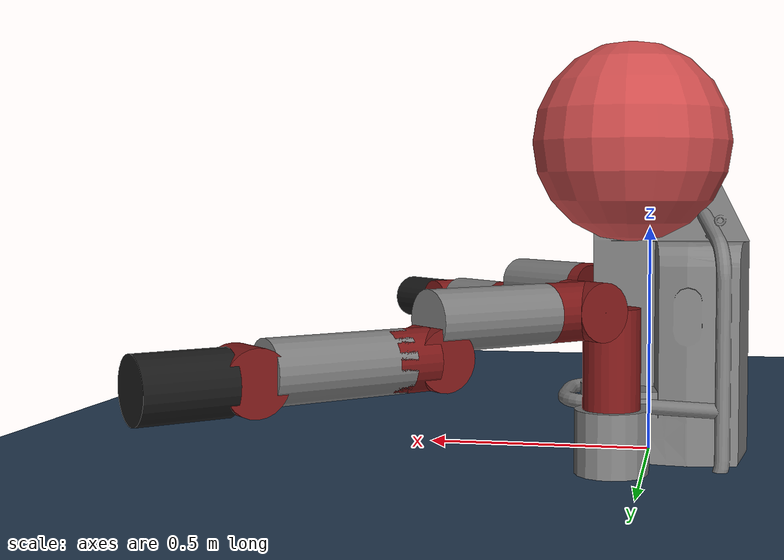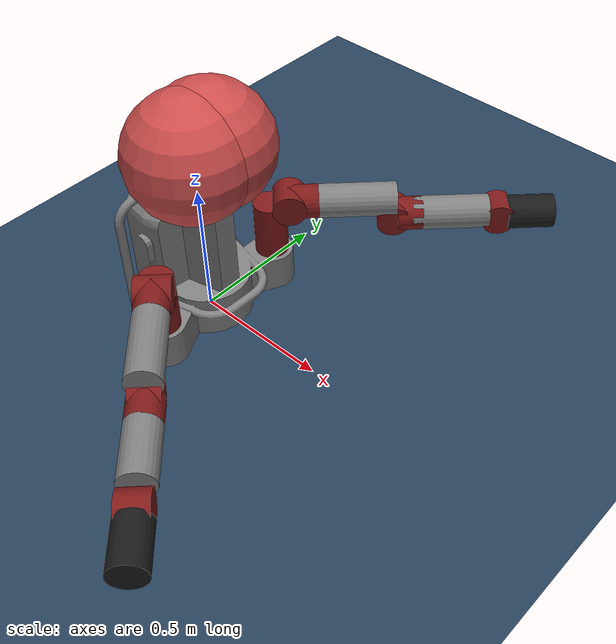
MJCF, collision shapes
<mujoco model="baxter scene">
  <include file="baxter.xml"/>

  <statistic center="0.3 0 0.4" extent="0.8"/>

  <visual>
    <headlight diffuse="0.6 0.6 0.6" ambient="0.3 0.3 0.3" specular="0 0 0"/>
    <rgba haze="0.15 0.25 0.35 1"/>
    <global azimuth="140" elevation="-20"/>
  </visual>

  <asset>
    <texture type="skybox" builtin="gradient" rgb1="0.3 0.5 0.7" rgb2="0 0 0" width="512" height="3072"/>
    <texture type="2d" name="groundplane" builtin="checker" mark="edge" rgb1="0.2 0.3 0.4" rgb2="0.1 0.2 0.3"
      markrgb="0.8 0.8 0.8" width="300" height="300"/>
    <material name="groundplane" texture="groundplane" texuniform="true" texrepeat="5 5" reflectance="0.2"/>
  </asset>

  <worldbody>
    <light pos="0 0 1.5" dir="0 0 -1" directional="true"/>
    <geom name="floor" size="0 0 0.05" type="plane" material="groundplane"/>
  </worldbody>
</mujoco>

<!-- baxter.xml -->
<mujoco model="baxter">
  <compiler angle="radian" meshdir="assets" autolimits="true"/>
  <asset>
    <material name="Material_001.001" specular="0.5" shininess="0.225" rgba="0.121856 0.121856 0.121856 1.000000"/>
    <material name="Material.003" specular="0.5" shininess="0.225" rgba="0.640000 0.000000 0.000000 1.000000"/>
    <material name="Material_001.003" specular="0.5" shininess="0.225" rgba="0.000000 0.000000 0.000000 1.000000"/>
    <material name="Material_001.004" specular="0.5" shininess="0.225" rgba="0.512000 0.000000 0.000000 1.000000"/>
    <material name="Material_002" specular="0.5" shininess="0.225" rgba="0.016303 0.016303 0.016303 1.000000"/>
    <material name="Material_001.005" specular="0.5" shininess="0.225" rgba="0.097485 0.097485 0.097485 1.000000"/>
    <material name="Material_002.005" specular="0.5" shininess="0.225" rgba="0.016303 0.016303 0.016303 1.000000"/>
    <material name="Material_001.006" specular="0.5" shininess="0.225" rgba="0.640000 0.000000 0.000000 1.000000"/>
    <material name="Material_001.010" specular="0.5" shininess="0.225" rgba="0.512000 0.000000 0.000000 1.000000"/>
    <material name="Material_003" specular="0.5" shininess="0.225" rgba="0.016303 0.016303 0.016303 1.000000"/>
    <material name="Material_004" specular="0.5" shininess="0.225" rgba="0.066807 0.066822 0.066822 1.000000"/>
    <material name="Material_005" specular="0.5" shininess="0.225" rgba="0.640000 0.640000 0.640000 1.000000"/>
    <material name="Material_006" specular="0.5" shininess="0.225" rgba="0.351258 0.351258 0.351258 1.000000"/>
    <material name="Material_007" specular="0.5" shininess="0.225" rgba="0.016303 0.016303 0.016303 1.000000"/>
    <material name="Material_001.008" specular="0.5" shininess="0.225" rgba="0.512000 0.013653 0.013653 1.000000"/>
    <material name="Material_002.002" specular="0.5" shininess="0.225" rgba="0.016303 0.016303 0.016303 1.000000"/>
    <material name="Material_001.009" specular="0.5" shininess="0.225" rgba="0.512000 0.000000 0.000000 1.000000"/>
    <material name="Material_002.003" specular="0.5" shininess="0.225" rgba="0.097485 0.097485 0.097485 1.000000"/>
    <material name="Material_003.001" specular="0.5" shininess="0.225" rgba="0.016303 0.016303 0.016303 1.000000"/>
    <material name="Material_005.001" specular="0.5" shininess="0.225" rgba="0.512000 0.512000 0.512000 1.000000"/>
    <material name="Material_002.004" specular="0.5" shininess="0.225" rgba="0.097485 0.097485 0.097485 1.000000"/>
    <material name="Material_003.002" specular="0.5" shininess="0.225" rgba="0.016303 0.016303 0.016303 1.000000"/>
    <material name="Material_001.011" specular="0.5" shininess="0.225" rgba="0.016303 0.016303 0.016303 1.000000"/>
    <material name="Material_002.006" specular="0.5" shininess="0.225" rgba="0.512000 0.512000 0.512000 1.000000"/>
    <material name="Material_003.004" specular="0.5" shininess="0.225" rgba="0.170722 0.170722 0.170722 1.000000"/>

    <mesh name="H0" file="H0.obj"/>
    <mesh name="H1_0" file="H1_0.obj"/>
    <mesh name="H1_1" file="H1_1.obj"/>
    <mesh name="E1_0" file="E1_0.obj"/>
    <mesh name="E1_1" file="E1_1.obj"/>
    <mesh name="W1_0" file="W1_0.obj"/>
    <mesh name="W1_1" file="W1_1.obj"/>
    <mesh name="S1" file="S1.obj"/>
    <mesh name="base_link_0" file="base_link_0.obj"/>
    <mesh name="base_link_1" file="base_link_1.obj"/>
    <mesh name="base_link_2" file="base_link_2.obj"/>
    <mesh name="base_link_3" file="base_link_3.obj"/>
    <mesh name="base_link_4" file="base_link_4.obj"/>
    <mesh name="base_link_5" file="base_link_5.obj"/>
    <mesh name="E0_0" file="E0_0.obj"/>
    <mesh name="E0_1" file="E0_1.obj"/>
    <mesh name="W0_0" file="W0_0.obj"/>
    <mesh name="W0_1" file="W0_1.obj"/>
    <mesh name="W0_2" file="W0_2.obj"/>
    <mesh name="W0_3" file="W0_3.obj"/>
    <mesh name="S0_0" file="S0_0.obj"/>
    <mesh name="S0_1" file="S0_1.obj"/>
    <mesh name="W2_0" file="W2_0.obj"/>
    <mesh name="W2_1" file="W2_1.obj"/>
    <mesh name="W2_2" file="W2_2.obj"/>
    <mesh name="base_link_collision" file="base_link_collision.obj"/>
  </asset>
  <default>
    <default class="viz">
      <geom contype="0" conaffinity="0" group="1" type="mesh"/>
    </default>
    <default class="right_col">
      <geom contype="4" conaffinity="3" group="0"/>
    </default>
    <default class="left_col">
      <geom contype="2" conaffinity="5" group="0"/>
    </default>
    <default class="visual">
      <geom contype="0" conaffinity="0" group="1" type="mesh"/>
    </default>
  </default>
  <contact>
    <exclude body1="right_upper_shoulder" body2="torso"/>
    <exclude body1="right_upper_shoulder" body2="right_upper_elbow"/>
    <exclude body1="right_lower_shoulder" body2="torso"/>
    <exclude body1="left_upper_shoulder" body2="torso"/>
    <exclude body1="left_upper_shoulder" body2="left_upper_elbow"/>
    <exclude body1="left_lower_shoulder" body2="torso"/>
    <exclude body1="collision_head_link_1" body2="torso"/>
    <exclude body1="collision_head_link_2" body2="torso"/>
  </contact>
  <worldbody>
    <body name="base" pos="0 0 -0.062">
      <!-- robot view -->
      <camera mode="fixed" name="robotview" pos="1.3 0 0.4" quat="0.653 0.271 0.271 0.653"/>
      <inertial pos="0 0 0" mass="10" diaginertia="0.001 0.001 0.001"/>
      <!-- mount attached here -->
      <body name="fixed_base_link" pos="0 0 0">
        <body name="collision_head_link_1" pos="0.11 0 0.75">
          <inertial pos="0 0 0" mass="0.0001" diaginertia="1e-008 1e-008 1e-008"/>
          <geom name="collision_head_link_1_vis" margin="0.001" type="sphere" class="viz" size="0.001"
            rgba="0.8 0.3 0.3 1" pos="0 0 0"/>
          <geom name="collision_head_link_1_col" margin="0.001" type="sphere" size="0.22" rgba="0.8 0.3 0.3 0.3"
            pos="-0.07 -0.04 0"/>
        </body>
        <body name="collision_head_link_2" pos="0.11 0 0.75">
          <inertial pos="0 0 0" mass="0.0001" diaginertia="1e-008 1e-008 1e-008"/>
          <geom name="collision_head_link_2_col0" margin="0.001" type="sphere" size="0.001" rgba="0.8 0.3 0.3 0.3"
            pos="0 0 0"/>
          <geom name="collision_head_link_2_col1" margin="0.001" type="sphere" size="0.22" rgba="0.8 0.3 0.3 0.3"
            pos="-0.07 0.04 0"/>
        </body>
        <body name="torso" pos="0 0 0">
          <site name="center" pos="0 0 0" size="0.01" rgba="1 0.3 0.3 1" group="2"/>
          <inertial pos="0 0 0" quat="0.997433 0.00167178 0.0715546 -0.00209003" mass="35.3365"
            diaginertia="1.87139 1.66268 0.779991"/>
          <geom mesh="base_link_0" material="Material_005" class="visual"/>
          <geom mesh="base_link_1" material="Material_007" class="visual"/>
          <geom mesh="base_link_2" material="Material_003" class="visual"/>
          <geom mesh="base_link_3" material="Material_001.010" class="visual"/>
          <geom mesh="base_link_4" material="Material_004" class="visual"/>
          <geom mesh="base_link_5" material="Material_006" class="visual"/>
          <geom name="base_link_col" margin="0.001" type="mesh" mesh="base_link_collision"/>
          <body name="head" pos="0.06 0 0.686">
            <inertial pos="0 0 0" quat="0.339345 0.850736 -0.347392 0.201027" mass="0.547767"
              diaginertia="0.00474065 0.00461087 0.00199949"/>
            <!-- Don't use head joint -->
            <geom material="Material_001.001" mesh="H0" class="visual"/>
            <body name="screen" pos="0.1227 0 0" quat="0.453099 0.542864 0.542864 0.453099">
              <inertial pos="0 0 0" quat="0.995785 0.0113501 -0.000390852 0.0910132" mass="0.440171"
                diaginertia="0.0040484 0.00275826 0.00150834"/>
              <geom mesh="H1_0" material="Material.003" pos="0 0 -.03" euler="0 -1.57 0" class="visual"/>
              <geom mesh="H1_1" material="Material_001.003" pos="0 0 -.03" euler="0 -1.57 0" class="visual"/>
              <geom name="screen2_vis" margin="0.001" class="viz" type="box" size="0.109 0.08 0.002"
                rgba="0.9 0.9 0.9 1" pos="0 -0.016 0" quat="0.991445 0.130526 0 0"/>
            </body>
          </body>
          <body name="right_arm_mount" pos="0.024645 -0.219645 0.118588" quat="0.923879 0 0 -0.382684">
            <site name="right_center" pos="0 0 0" size="0.01" rgba="1 0.3 0.3 1" group="2"/>
            <inertial pos="0 0 0" mass="0.0001" diaginertia="1e-008 1e-008 1e-008"/>
            <body name="right_upper_shoulder" pos="0.055695 0 0.011038">
              <inertial pos="0.01783 0.00086 0.19127" quat="0.975667 0.0673303 -0.206117 0.0325173" mass="5.70044"
                diaginertia="0.0498344 0.0377511 0.0331351"/>
              <joint limited="true" damping="0" armature=".01" name="right_s0" type="hinge" pos="0 0 0" axis="0 0 1"
                range="-1.70168 1.70168"/>
              <geom mesh="S0_0" material="Material_002.004" class="visual"/>
              <geom mesh="S0_1" material="Material_003.002" class="visual"/>
              <geom margin="0.001" class="right_col" type="cylinder" size="0.06 0.1361" rgba="0.5 0.1 0.1 1"
                pos="0 0 0.1361" name="right_s0_collision"/>
              <body name="right_lower_shoulder" pos="0.069 0 0.27035" quat="0.707107 -0.707107 0 0">
                <inertial pos="0.06845 0.00269 -0.00529" quat="0.447487 0.536948 0.56425 0.439391" mass="3.22698"
                  diaginertia="0.0278991 0.0212327 0.0112937"/>
                <joint limited="true" damping="0" armature=".01" name="right_s1" type="hinge" pos="0 0 0" axis="0 0 1"
                  range="-2.147 1.047"/>
                <geom material="Material_001.006" mesh="S1" class="visual"/>
                <geom margin="0.001" class="right_col" type="cylinder" size="0.06 0.06" rgba="0.5 0.1 0.1 1" pos="0 0 0"
                  name="right_s1_collision"/>
                <body name="right_upper_elbow" pos="0.102 0 0" quat="0.5 0.5 0.5 0.5">
                  <inertial pos="-0.00276 0.00132 0.18086" quat="0.838995 -0.0423128 -0.121287 0.52876" mass="4.31272"
                    diaginertia="0.0287695 0.0273625 0.011409"/>
                  <joint limited="true" damping="0" armature=".01" name="right_e0" type="hinge" pos="0 0 0" axis="0 0 1"
                    range="-3.05418 3.05418"/>
                  <geom mesh="E0_0" material="Material_001.008" class="visual"/>
                  <geom mesh="E0_1" material="Material_002.002" class="visual"/>
                  <geom margin="0.001" class="right_col" type="cylinder" size="0.06 0.0535" rgba="0.5 0.1 0.1 1"
                    pos="0 0 -0.0535" name="right_e0_collision"/>
                  <geom margin="0.001" class="right_col" name="right_upper_elbow_col" type="cylinder" size="0.06 0.1365"
                    pos="0 0 0.1365" rgba="0.499 0.499 0.499 1"/>
                  <body name="right_lower_elbow" pos="0.069 0 0.26242" quat="0.5 -0.5 -0.5 -0.5">
                    <inertial pos="0.02611 0.00159 -0.01117" quat="0.440433 0.577149 0.562777 0.395221" mass="2.07206"
                      diaginertia="0.0132096 0.00950002 0.00685697"/>
                    <joint limited="true" damping="0" armature=".01" name="right_e1" type="hinge" pos="0 0 0"
                      axis="0 0 1" range="-0.05 2.618"/>
                    <geom mesh="E1_0" material="Material_001.004" class="visual"/>
                    <geom mesh="E1_1" material="Material_002" class="visual"/>
                    <geom margin="0.001" class="right_col" type="cylinder" size="0.06 0.05" rgba="0.5 0.1 0.1 1"
                      pos="0 0 0" name="right_e1_collision"/>
                    <body name="right_upper_forearm" pos="0.10359 0 0" quat="0.5 0.5 0.5 0.5">
                      <inertial pos="-0.00168 0.0046 0.13952" quat="0.892709 -0.0256256 0.00446984 0.449882"
                        mass="2.24665" diaginertia="0.016916 0.0165511 0.00371123"/>
                      <joint limited="true" damping="0" armature=".01" name="right_w0" type="hinge" pos="0 0 0"
                        axis="0 0 1" range="-3.059 3.059"/>
                      <geom mesh="W0_0" material="Material_003.001" class="visual"/>
                      <geom mesh="W0_1" material="Material_001.009" class="visual"/>
                      <geom mesh="W0_2" material="Material_002.003" class="visual"/>
                      <geom mesh="W0_3" material="Material_005.001" class="visual"/>
                      <geom margin="0.001" class="right_col" type="cylinder" size="0.06 0.044" rgba="0.5 0.1 0.1 1"
                        pos="0 0 -0.044" name="right_w0_collision"/>
                      <geom margin="0.001" class="right_col" name="right_upper_forearm_col" type="cylinder"
                        size="0.06 0.1036" pos="0 0 0.1" rgba="0.499 0.499 0.499 1"/>
                      <body name="right_lower_forearm" pos="0.01 0 0.2707" quat="0.5 -0.5 -0.5 -0.5">
                        <inertial pos="0.06041 0.00697 0.006" quat="0.456911 0.468526 0.475683 0.587743" mass="1.60979"
                          diaginertia="0.00708828 0.00552689 0.00379383"/>
                        <joint limited="true" damping="0" armature=".01" name="right_w1" type="hinge" pos="0 0 0"
                          axis="0 0 1" range="-1.5708 2.094"/>
                        <geom mesh="W1_0" material="Material_001.005" class="visual"/>
                        <geom mesh="W1_1" material="Material_002.005" class="visual"/>
                        <geom margin="0.001" class="right_col" type="cylinder" size="0.06 0.05" rgba="0.5 0.1 0.1 1"
                          pos="0 0 0" name="right_w1_collision"/>
                        <body name="right_wrist" pos="0.115975 0 0" quat="0.5 0.5 0.5 0.5">
                          <inertial pos="0.00198 0.00125 0.01855" quat="0.0594843 0.68926 -0.16016 0.704082"
                            mass="0.35093" diaginertia="0.0003082 0.000269928 0.000251035"/>
                          <joint limited="true" damping="0" armature=".01" name="right_w2" type="hinge" pos="0 0 0"
                            axis="0 0 1" range="-3.059 3.059"/>
                          <geom mesh="W2_0" material="Material_002.006" class="visual"/>
                          <geom mesh="W2_1" material="Material_001.011" class="visual"/>
                          <geom mesh="W2_2" material="Material_003.004" class="visual"/>
                          <geom margin="0.001" class="right_col" type="cylinder" size="0.06 0.0825" rgba="0.1 0.1 0.1 1"
                            pos="0 0 0" name="right_w2_collision"/>
                          <body name="right_hand" pos="0 0 0.11355">
                            <!-- This camera points out from the eef. -->
                            <camera mode="fixed" name="right_eye_in_hand" pos="0.05 0 0" quat="0 0.707108 0.707108 0"
                              fovy="75"/>
                            <!-- right gripper gets added here -->
                          </body>
                        </body>
                      </body>
                    </body>
                  </body>
                </body>
              </body>
            </body>
          </body>
          <body name="left_arm_mount" pos="0.024645 0.219645 0.118588" quat="0.923879 0 0 0.382684">
            <site name="left_center" pos="0 0 0" size="0.01" rgba="1 0.3 0.3 1" group="2"/>
            <inertial pos="0 0 0" mass="0.0001" diaginertia="1e-008 1e-008 1e-008"/>
            <body name="left_upper_shoulder" pos="0.055695 0 0.011038">
              <inertial pos="0.01783 0.00086 0.19127" quat="0.975667 0.0673303 -0.206117 0.0325173" mass="5.70044"
                diaginertia="0.0498344 0.0377511 0.0331351"/>
              <joint limited="true" damping="0" armature=".01" name="left_s0" type="hinge" pos="0 0 0" axis="0 0 1"
                range="-1.70168 1.70168"/>
              <geom mesh="S0_0" material="Material_002.004" class="visual"/>
              <geom mesh="S0_1" material="Material_003.002" class="visual"/>
              <geom margin="0.001" class="left_col" type="cylinder" size="0.06 0.1361" rgba="0.5 0.1 0.1 1"
                pos="0 0 0.1361" name="left_s0_collision"/>
              <body name="left_lower_shoulder" pos="0.069 0 0.27035" quat="0.707107 -0.707107 0 0">
                <inertial pos="0.06845 0.00269 -0.00529" quat="0.447487 0.536948 0.56425 0.439391" mass="3.22698"
                  diaginertia="0.0278991 0.0212327 0.0112937"/>
                <joint limited="true" damping="0" armature=".01" name="left_s1" type="hinge" pos="0 0 0" axis="0 0 1"
                  range="-2.147 1.047"/>
                <geom material="Material_001.006" mesh="S1" class="visual"/>
                <geom margin="0.001" class="left_col" type="cylinder" size="0.06 0.06" rgba="0.5 0.1 0.1 1" pos="0 0 0"
                  name="left_s1_collision"/>
                <body name="left_upper_elbow" pos="0.102 0 0" quat="0.5 0.5 0.5 0.5">
                  <inertial pos="-0.00276 0.00132 0.18086" quat="0.838995 -0.0423128 -0.121287 0.52876" mass="4.31272"
                    diaginertia="0.0287695 0.0273625 0.011409"/>
                  <joint limited="true" damping="0" armature=".01" name="left_e0" type="hinge" pos="0 0 0" axis="0 0 1"
                    range="-3.05418 3.05418"/>
                  <geom mesh="E0_0" material="Material_001.008" class="visual"/>
                  <geom mesh="E0_1" material="Material_002.002" class="visual"/>
                  <geom margin="0.001" class="left_col" type="cylinder" size="0.06 0.0535" rgba="0.5 0.1 0.1 1"
                    pos="0 0 -0.0535" name="left_e0_collision"/>
                  <geom margin="0.001" class="left_col" name="left_upper_elbow_col" type="cylinder" size="0.06 0.1365"
                    pos="0 0 0.1365" rgba="0.499 0.499 0.499 1"/>
                  <body name="left_lower_elbow" pos="0.069 0 0.26242" quat="0.5 -0.5 -0.5 -0.5">
                    <inertial pos="0.02611 0.00159 -0.01117" quat="0.440433 0.577149 0.562777 0.395221" mass="2.07206"
                      diaginertia="0.0132096 0.00950002 0.00685697"/>
                    <joint limited="true" damping="0" armature=".01" name="left_e1" type="hinge" pos="0 0 0"
                      axis="0 0 1" range="-0.05 2.618"/>
                    <geom mesh="E1_0" material="Material_001.004" class="visual"/>
                    <geom mesh="E1_1" material="Material_002" class="visual"/>
                    <geom margin="0.001" class="left_col" type="cylinder" size="0.06 0.05" rgba="0.5 0.1 0.1 1"
                      pos="0 0 0" name="left_e1_collision"/>
                    <body name="left_upper_forearm" pos="0.10359 0 0" quat="0.5 0.5 0.5 0.5">
                      <inertial pos="-0.00168 0.0046 0.13952" quat="0.892709 -0.0256256 0.00446984 0.449882"
                        mass="2.24665" diaginertia="0.016916 0.0165511 0.00371123"/>
                      <joint limited="true" damping="0" armature=".01" name="left_w0" type="hinge" pos="0 0 0"
                        axis="0 0 1" range="-3.059 3.059"/>
                      <geom mesh="W0_0" material="Material_003.001" class="visual"/>
                      <geom mesh="W0_1" material="Material_001.009" class="visual"/>
                      <geom mesh="W0_2" material="Material_002.003" class="visual"/>
                      <geom mesh="W0_3" material="Material_005.001" class="visual"/>
                      <geom margin="0.001" class="left_col" type="cylinder" size="0.06 0.044" rgba="0.5 0.1 0.1 1"
                        pos="0 0 -0.044" name="left_w0_collision"/>
                      <geom margin="0.001" class="left_col" name="left_upper_forearm_col" type="cylinder"
                        size="0.06 0.136" pos="0 0 0.1" rgba="0.499 0.499 0.499 1"/>
                      <body name="left_lower_forearm" pos="0.01 0 0.2707" quat="0.5 -0.5 -0.5 -0.5">
                        <inertial pos="0.06041 0.00697 0.006" quat="0.456911 0.468526 0.475683 0.587743" mass="1.60979"
                          diaginertia="0.00708828 0.00552689 0.00379383"/>
                        <joint limited="true" damping="0" armature=".01" name="left_w1" type="hinge" pos="0 0 0"
                          axis="0 0 1" range="-1.5708 2.094"/>
                        <geom mesh="W1_0" material="Material_001.005" class="visual"/>
                        <geom mesh="W1_1" material="Material_002.005" class="visual"/>
                        <geom margin="0.001" class="left_col" type="cylinder" size="0.06 0.05" rgba="0.5 0.1 0.1 1"
                          pos="0 0 0" name="left_w1_collision"/>
                        <body name="left_wrist" pos="0.115975 0 0" quat="0.5 0.5 0.5 0.5">
                          <inertial pos="0.00198 0.00125 0.01855" quat="0.0594843 0.68926 -0.16016 0.704082"
                            mass="0.35093" diaginertia="0.0003082 0.000269928 0.000251035"/>
                          <joint limited="true" damping="0" armature=".01" name="left_w2" type="hinge" pos="0 0 0"
                            axis="0 0 1" range="-3.059 3.059"/>
                          <geom mesh="W2_0" material="Material_002.006" class="visual"/>
                          <geom mesh="W2_1" material="Material_001.011" class="visual"/>
                          <geom mesh="W2_2" material="Material_003.004" class="visual"/>
                          <geom margin="0.001" class="left_col" type="cylinder" size="0.06 0.0825" rgba="0.1 0.1 0.1 1"
                            pos="0 0 0" name="left_w2_collision"/>
                          <body name="left_hand" pos="0 0 0.11355">
                            <!-- This camera points out from the eef. -->
                            <camera mode="fixed" name="left_eye_in_hand" pos="0.05 0 0" quat="0 0.707108 0.707108 0"
                              fovy="75"/>
                            <!-- left gripper gets added here -->
                          </body>
                        </body>
                      </body>
                    </body>
                  </body>
                </body>
              </body>
            </body>
          </body>
        </body>
      </body>
    </body>
  </worldbody>
  <actuator>
    <motor ctrllimited="true" ctrlrange="-50 50" joint="right_s0" name="torq_right_j0"/>
    <motor ctrllimited="true" ctrlrange="-100 100" joint="right_s1" name="torq_right_j1"/>
    <motor ctrllimited="true" ctrlrange="-50 50" joint="right_e0" name="torq_right_j2"/>
    <motor ctrllimited="true" ctrlrange="-50 50" joint="right_e1" name="torq_right_j3"/>
    <motor ctrllimited="true" ctrlrange="-15 15" joint="right_w0" name="torq_right_j4"/>
    <motor ctrllimited="true" ctrlrange="-15 15" joint="right_w1" name="torq_right_j5"/>
    <motor ctrllimited="true" ctrlrange="-15 15" joint="right_w2" name="torq_right_j6"/>
    <motor ctrllimited="true" ctrlrange="-50 50" joint="left_s0" name="torq_left_j0"/>
    <motor ctrllimited="true" ctrlrange="-100 100" joint="left_s1" name="torq_left_j1"/>
    <motor ctrllimited="true" ctrlrange="-50 50" joint="left_e0" name="torq_left_j2"/>
    <motor ctrllimited="true" ctrlrange="-50 50" joint="left_e1" name="torq_left_j3"/>
    <motor ctrllimited="true" ctrlrange="-15 15" joint="left_w0" name="torq_left_j4"/>
    <motor ctrllimited="true" ctrlrange="-15 15" joint="left_w1" name="torq_left_j5"/>
    <motor ctrllimited="true" ctrlrange="-15 15" joint="left_w2" name="torq_left_j6"/>
  </actuator>
</mujoco>
